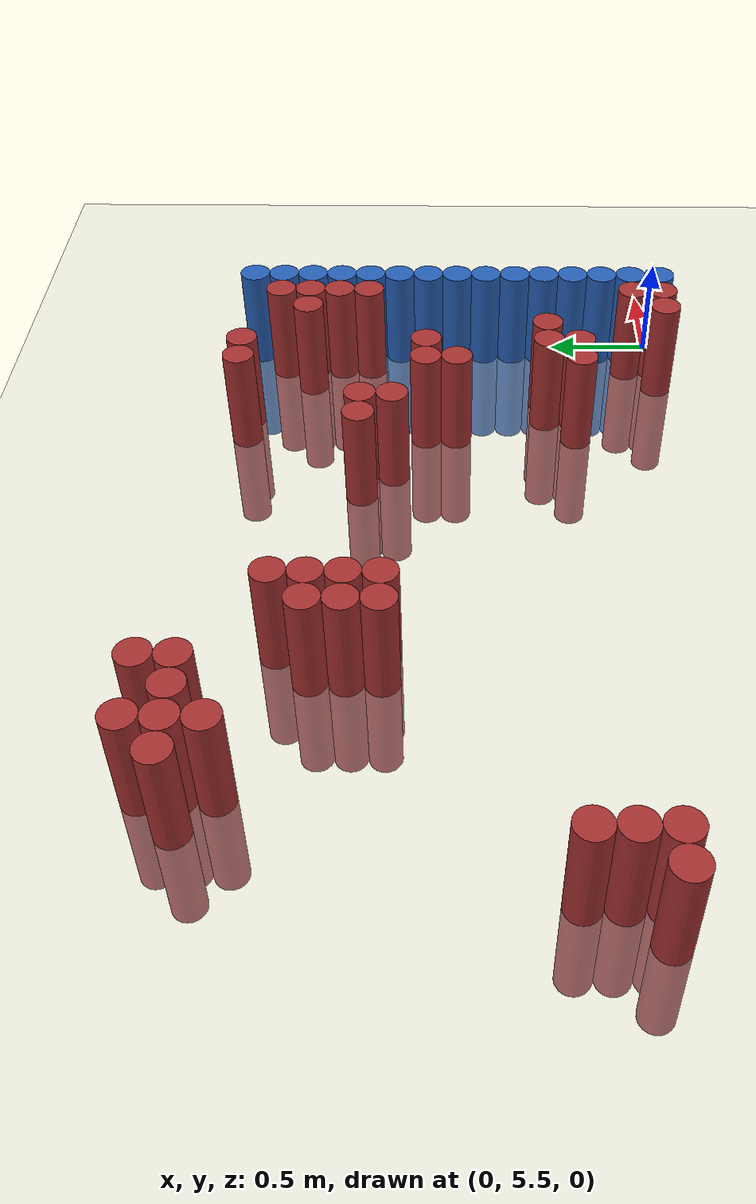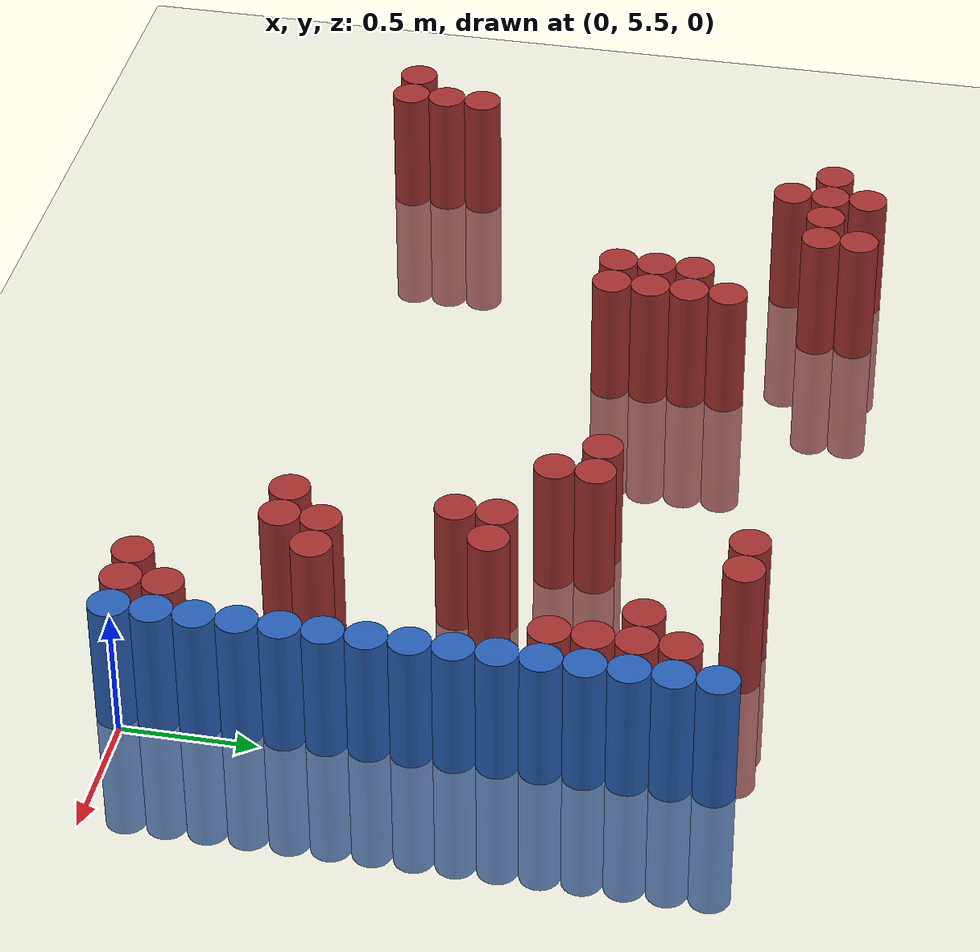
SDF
<sdf version="1.6">
 <world name="default">
  <model name="ground_plane">
   <static>1</static>
   <link name="link">
    <collision name="collision">
     <geometry><plane><normal>0 0 1</normal><size>100 100</size></plane></geometry>
     <surface><friction><ode><mu>100</mu><mu2>50</mu2></ode></friction></surface>
    </collision>
    <visual name="visual">
     <cast_shadows>0</cast_shadows>
     <geometry><plane><normal>0 0 1</normal><size>100 100</size></plane></geometry>
     <material>
      <script><uri>file://media/materials/scripts/gazebo.material</uri><name>Gazebo/Grey</name></script>
     </material>
    </visual>
   </link>
  </model>
  <model name="unit_cylinder_158">
   <static>1</static>
   <pose>-3.675000 5.775000 0.000000 0.000000 0.000000 0.000000</pose>
   <link name="link">
    <inertial>
     <mass>1</mass>
     <inertia><ixx>0.145833</ixx><ixy>0</ixy><ixz>0</ixz><iyy>0.145833</iyy><iyz>0</iyz><izz>0.125</izz></inertia>
    </inertial>
    <collision name="collision">
     <geometry><cylinder><radius>0.075000</radius><length>1</length></cylinder></geometry>
    </collision>
    <visual name="visual">
     <geometry><cylinder><radius>0.075000</radius><length>1</length></cylinder></geometry>
     <material>
      <ambient>0.648000 0.192000 0.192000 1</ambient>
      <diffuse>0.648000 0.192000 0.192000 1</diffuse>
     </material>
     <material>
      <script><name>Gazebo/Grey</name><uri>file://media/materials/scripts/gazebo.material</uri></script>
     </material>
    </visual>
   </link>
  </model>
  <model name="unit_cylinder_163">
   <static>1</static>
   <pose>-3.525000 5.775000 0.000000 0.000000 0.000000 0.000000</pose>
   <link name="link">
    <inertial>
     <mass>1</mass>
     <inertia><ixx>0.145833</ixx><ixy>0</ixy><ixz>0</ixz><iyy>0.145833</iyy><iyz>0</iyz><izz>0.125</izz></inertia>
    </inertial>
    <collision name="collision">
     <geometry><cylinder><radius>0.075000</radius><length>1</length></cylinder></geometry>
    </collision>
    <visual name="visual">
     <geometry><cylinder><radius>0.075000</radius><length>1</length></cylinder></geometry>
     <material>
      <ambient>0.648000 0.192000 0.192000 1</ambient>
      <diffuse>0.648000 0.192000 0.192000 1</diffuse>
     </material>
     <material>
      <script><name>Gazebo/Grey</name><uri>file://media/materials/scripts/gazebo.material</uri></script>
     </material>
    </visual>
   </link>
  </model>
  <model name="unit_cylinder_164">
   <static>1</static>
   <pose>-3.525000 5.925000 0.000000 0.000000 0.000000 0.000000</pose>
   <link name="link">
    <inertial>
     <mass>1</mass>
     <inertia><ixx>0.145833</ixx><ixy>0</ixy><ixz>0</ixz><iyy>0.145833</iyy><iyz>0</iyz><izz>0.125</izz></inertia>
    </inertial>
    <collision name="collision">
     <geometry><cylinder><radius>0.075000</radius><length>1</length></cylinder></geometry>
    </collision>
    <visual name="visual">
     <geometry><cylinder><radius>0.075000</radius><length>1</length></cylinder></geometry>
     <material>
      <ambient>0.648000 0.192000 0.192000 1</ambient>
      <diffuse>0.648000 0.192000 0.192000 1</diffuse>
     </material>
     <material>
      <script><name>Gazebo/Grey</name><uri>file://media/materials/scripts/gazebo.material</uri></script>
     </material>
    </visual>
   </link>
  </model>
  <model name="unit_cylinder_165">
   <static>1</static>
   <pose>-3.525000 6.075000 0.000000 0.000000 0.000000 0.000000</pose>
   <link name="link">
    <inertial>
     <mass>1</mass>
     <inertia><ixx>0.145833</ixx><ixy>0</ixy><ixz>0</ixz><iyy>0.145833</iyy><iyz>0</iyz><izz>0.125</izz></inertia>
    </inertial>
    <collision name="collision">
     <geometry><cylinder><radius>0.075000</radius><length>1</length></cylinder></geometry>
    </collision>
    <visual name="visual">
     <geometry><cylinder><radius>0.075000</radius><length>1</length></cylinder></geometry>
     <material>
      <ambient>0.648000 0.192000 0.192000 1</ambient>
      <diffuse>0.648000 0.192000 0.192000 1</diffuse>
     </material>
     <material>
      <script><name>Gazebo/Grey</name><uri>file://media/materials/scripts/gazebo.material</uri></script>
     </material>
    </visual>
   </link>
  </model>
  <model name="unit_cylinder_168">
   <static>1</static>
   <pose>-3.225000 7.575000 0.000000 0.000000 0.000000 0.000000</pose>
   <link name="link">
    <inertial>
     <mass>1</mass>
     <inertia><ixx>0.145833</ixx><ixy>0</ixy><ixz>0</ixz><iyy>0.145833</iyy><iyz>0</iyz><izz>0.125</izz></inertia>
    </inertial>
    <collision name="collision">
     <geometry><cylinder><radius>0.075000</radius><length>1</length></cylinder></geometry>
    </collision>
    <visual name="visual">
     <geometry><cylinder><radius>0.075000</radius><length>1</length></cylinder></geometry>
     <material>
      <ambient>0.648000 0.192000 0.192000 1</ambient>
      <diffuse>0.648000 0.192000 0.192000 1</diffuse>
     </material>
     <material>
      <script><name>Gazebo/Grey</name><uri>file://media/materials/scripts/gazebo.material</uri></script>
     </material>
    </visual>
   </link>
  </model>
  <model name="unit_cylinder_171">
   <static>1</static>
   <pose>-3.075000 7.425000 0.000000 0.000000 0.000000 0.000000</pose>
   <link name="link">
    <inertial>
     <mass>1</mass>
     <inertia><ixx>0.145833</ixx><ixy>0</ixy><ixz>0</ixz><iyy>0.145833</iyy><iyz>0</iyz><izz>0.125</izz></inertia>
    </inertial>
    <collision name="collision">
     <geometry><cylinder><radius>0.075000</radius><length>1</length></cylinder></geometry>
    </collision>
    <visual name="visual">
     <geometry><cylinder><radius>0.075000</radius><length>1</length></cylinder></geometry>
     <material>
      <ambient>0.648000 0.192000 0.192000 1</ambient>
      <diffuse>0.648000 0.192000 0.192000 1</diffuse>
     </material>
     <material>
      <script><name>Gazebo/Grey</name><uri>file://media/materials/scripts/gazebo.material</uri></script>
     </material>
    </visual>
   </link>
  </model>
  <model name="unit_cylinder_172">
   <static>1</static>
   <pose>-3.075000 7.575000 0.000000 0.000000 0.000000 0.000000</pose>
   <link name="link">
    <inertial>
     <mass>1</mass>
     <inertia><ixx>0.145833</ixx><ixy>0</ixy><ixz>0</ixz><iyy>0.145833</iyy><iyz>0</iyz><izz>0.125</izz></inertia>
    </inertial>
    <collision name="collision">
     <geometry><cylinder><radius>0.075000</radius><length>1</length></cylinder></geometry>
    </collision>
    <visual name="visual">
     <geometry><cylinder><radius>0.075000</radius><length>1</length></cylinder></geometry>
     <material>
      <ambient>0.648000 0.192000 0.192000 1</ambient>
      <diffuse>0.648000 0.192000 0.192000 1</diffuse>
     </material>
     <material>
      <script><name>Gazebo/Grey</name><uri>file://media/materials/scripts/gazebo.material</uri></script>
     </material>
    </visual>
   </link>
  </model>
  <model name="unit_cylinder_173">
   <static>1</static>
   <pose>-3.075000 7.725000 0.000000 0.000000 0.000000 0.000000</pose>
   <link name="link">
    <inertial>
     <mass>1</mass>
     <inertia><ixx>0.145833</ixx><ixy>0</ixy><ixz>0</ixz><iyy>0.145833</iyy><iyz>0</iyz><izz>0.125</izz></inertia>
    </inertial>
    <collision name="collision">
     <geometry><cylinder><radius>0.075000</radius><length>1</length></cylinder></geometry>
    </collision>
    <visual name="visual">
     <geometry><cylinder><radius>0.075000</radius><length>1</length></cylinder></geometry>
     <material>
      <ambient>0.648000 0.192000 0.192000 1</ambient>
      <diffuse>0.648000 0.192000 0.192000 1</diffuse>
     </material>
     <material>
      <script><name>Gazebo/Grey</name><uri>file://media/materials/scripts/gazebo.material</uri></script>
     </material>
    </visual>
   </link>
  </model>
  <model name="unit_cylinder_177">
   <static>1</static>
   <pose>-2.925000 7.575000 0.000000 0.000000 0.000000 0.000000</pose>
   <link name="link">
    <inertial>
     <mass>1</mass>
     <inertia><ixx>0.145833</ixx><ixy>0</ixy><ixz>0</ixz><iyy>0.145833</iyy><iyz>0</iyz><izz>0.125</izz></inertia>
    </inertial>
    <collision name="collision">
     <geometry><cylinder><radius>0.075000</radius><length>1</length></cylinder></geometry>
    </collision>
    <visual name="visual">
     <geometry><cylinder><radius>0.075000</radius><length>1</length></cylinder></geometry>
     <material>
      <ambient>0.648000 0.192000 0.192000 1</ambient>
      <diffuse>0.648000 0.192000 0.192000 1</diffuse>
     </material>
     <material>
      <script><name>Gazebo/Grey</name><uri>file://media/materials/scripts/gazebo.material</uri></script>
     </material>
    </visual>
   </link>
  </model>
  <model name="unit_cylinder_182">
   <static>1</static>
   <pose>-2.775000 7.575000 0.000000 0.000000 0.000000 0.000000</pose>
   <link name="link">
    <inertial>
     <mass>1</mass>
     <inertia><ixx>0.145833</ixx><ixy>0</ixy><ixz>0</ixz><iyy>0.145833</iyy><iyz>0</iyz><izz>0.125</izz></inertia>
    </inertial>
    <collision name="collision">
     <geometry><cylinder><radius>0.075000</radius><length>1</length></cylinder></geometry>
    </collision>
    <visual name="visual">
     <geometry><cylinder><radius>0.075000</radius><length>1</length></cylinder></geometry>
     <material>
      <ambient>0.648000 0.192000 0.192000 1</ambient>
      <diffuse>0.648000 0.192000 0.192000 1</diffuse>
     </material>
     <material>
      <script><name>Gazebo/Grey</name><uri>file://media/materials/scripts/gazebo.material</uri></script>
     </material>
    </visual>
   </link>
  </model>
  <model name="unit_cylinder_183">
   <static>1</static>
   <pose>-2.775000 7.725000 0.000000 0.000000 0.000000 0.000000</pose>
   <link name="link">
    <inertial>
     <mass>1</mass>
     <inertia><ixx>0.145833</ixx><ixy>0</ixy><ixz>0</ixz><iyy>0.145833</iyy><iyz>0</iyz><izz>0.125</izz></inertia>
    </inertial>
    <collision name="collision">
     <geometry><cylinder><radius>0.075000</radius><length>1</length></cylinder></geometry>
    </collision>
    <visual name="visual">
     <geometry><cylinder><radius>0.075000</radius><length>1</length></cylinder></geometry>
     <material>
      <ambient>0.648000 0.192000 0.192000 1</ambient>
      <diffuse>0.648000 0.192000 0.192000 1</diffuse>
     </material>
     <material>
      <script><name>Gazebo/Grey</name><uri>file://media/materials/scripts/gazebo.material</uri></script>
     </material>
    </visual>
   </link>
  </model>
  <model name="unit_cylinder_187">
   <static>1</static>
   <pose>-2.475000 6.825000 0.000000 0.000000 0.000000 0.000000</pose>
   <link name="link">
    <inertial>
     <mass>1</mass>
     <inertia><ixx>0.145833</ixx><ixy>0</ixy><ixz>0</ixz><iyy>0.145833</iyy><iyz>0</iyz><izz>0.125</izz></inertia>
    </inertial>
    <collision name="collision">
     <geometry><cylinder><radius>0.075000</radius><length>1</length></cylinder></geometry>
    </collision>
    <visual name="visual">
     <geometry><cylinder><radius>0.075000</radius><length>1</length></cylinder></geometry>
     <material>
      <ambient>0.648000 0.192000 0.192000 1</ambient>
      <diffuse>0.648000 0.192000 0.192000 1</diffuse>
     </material>
     <material>
      <script><name>Gazebo/Grey</name><uri>file://media/materials/scripts/gazebo.material</uri></script>
     </material>
    </visual>
   </link>
  </model>
  <model name="unit_cylinder_188">
   <static>1</static>
   <pose>-2.475000 6.975000 0.000000 0.000000 0.000000 0.000000</pose>
   <link name="link">
    <inertial>
     <mass>1</mass>
     <inertia><ixx>0.145833</ixx><ixy>0</ixy><ixz>0</ixz><iyy>0.145833</iyy><iyz>0</iyz><izz>0.125</izz></inertia>
    </inertial>
    <collision name="collision">
     <geometry><cylinder><radius>0.075000</radius><length>1</length></cylinder></geometry>
    </collision>
    <visual name="visual">
     <geometry><cylinder><radius>0.075000</radius><length>1</length></cylinder></geometry>
     <material>
      <ambient>0.648000 0.192000 0.192000 1</ambient>
      <diffuse>0.648000 0.192000 0.192000 1</diffuse>
     </material>
     <material>
      <script><name>Gazebo/Grey</name><uri>file://media/materials/scripts/gazebo.material</uri></script>
     </material>
    </visual>
   </link>
  </model>
  <model name="unit_cylinder_189">
   <static>1</static>
   <pose>-2.475000 7.125000 0.000000 0.000000 0.000000 0.000000</pose>
   <link name="link">
    <inertial>
     <mass>1</mass>
     <inertia><ixx>0.145833</ixx><ixy>0</ixy><ixz>0</ixz><iyy>0.145833</iyy><iyz>0</iyz><izz>0.125</izz></inertia>
    </inertial>
    <collision name="collision">
     <geometry><cylinder><radius>0.075000</radius><length>1</length></cylinder></geometry>
    </collision>
    <visual name="visual">
     <geometry><cylinder><radius>0.075000</radius><length>1</length></cylinder></geometry>
     <material>
      <ambient>0.648000 0.192000 0.192000 1</ambient>
      <diffuse>0.648000 0.192000 0.192000 1</diffuse>
     </material>
     <material>
      <script><name>Gazebo/Grey</name><uri>file://media/materials/scripts/gazebo.material</uri></script>
     </material>
    </visual>
   </link>
  </model>
  <model name="unit_cylinder_190">
   <static>1</static>
   <pose>-2.325000 6.825000 0.000000 0.000000 0.000000 0.000000</pose>
   <link name="link">
    <inertial>
     <mass>1</mass>
     <inertia><ixx>0.145833</ixx><ixy>0</ixy><ixz>0</ixz><iyy>0.145833</iyy><iyz>0</iyz><izz>0.125</izz></inertia>
    </inertial>
    <collision name="collision">
     <geometry><cylinder><radius>0.075000</radius><length>1</length></cylinder></geometry>
    </collision>
    <visual name="visual">
     <geometry><cylinder><radius>0.075000</radius><length>1</length></cylinder></geometry>
     <material>
      <ambient>0.648000 0.192000 0.192000 1</ambient>
      <diffuse>0.648000 0.192000 0.192000 1</diffuse>
     </material>
     <material>
      <script><name>Gazebo/Grey</name><uri>file://media/materials/scripts/gazebo.material</uri></script>
     </material>
    </visual>
   </link>
  </model>
  <model name="unit_cylinder_191">
   <static>1</static>
   <pose>-2.325000 6.975000 0.000000 0.000000 0.000000 0.000000</pose>
   <link name="link">
    <inertial>
     <mass>1</mass>
     <inertia><ixx>0.145833</ixx><ixy>0</ixy><ixz>0</ixz><iyy>0.145833</iyy><iyz>0</iyz><izz>0.125</izz></inertia>
    </inertial>
    <collision name="collision">
     <geometry><cylinder><radius>0.075000</radius><length>1</length></cylinder></geometry>
    </collision>
    <visual name="visual">
     <geometry><cylinder><radius>0.075000</radius><length>1</length></cylinder></geometry>
     <material>
      <ambient>0.648000 0.192000 0.192000 1</ambient>
      <diffuse>0.648000 0.192000 0.192000 1</diffuse>
     </material>
     <material>
      <script><name>Gazebo/Grey</name><uri>file://media/materials/scripts/gazebo.material</uri></script>
     </material>
    </visual>
   </link>
  </model>
  <model name="unit_cylinder_192">
   <static>1</static>
   <pose>-2.325000 7.125000 0.000000 0.000000 0.000000 0.000000</pose>
   <link name="link">
    <inertial>
     <mass>1</mass>
     <inertia><ixx>0.145833</ixx><ixy>0</ixy><ixz>0</ixz><iyy>0.145833</iyy><iyz>0</iyz><izz>0.125</izz></inertia>
    </inertial>
    <collision name="collision">
     <geometry><cylinder><radius>0.075000</radius><length>1</length></cylinder></geometry>
    </collision>
    <visual name="visual">
     <geometry><cylinder><radius>0.075000</radius><length>1</length></cylinder></geometry>
     <material>
      <ambient>0.648000 0.192000 0.192000 1</ambient>
      <diffuse>0.648000 0.192000 0.192000 1</diffuse>
     </material>
     <material>
      <script><name>Gazebo/Grey</name><uri>file://media/materials/scripts/gazebo.material</uri></script>
     </material>
    </visual>
   </link>
  </model>
  <model name="unit_cylinder_193">
   <static>1</static>
   <pose>-2.325000 7.275000 0.000000 0.000000 0.000000 0.000000</pose>
   <link name="link">
    <inertial>
     <mass>1</mass>
     <inertia><ixx>0.145833</ixx><ixy>0</ixy><ixz>0</ixz><iyy>0.145833</iyy><iyz>0</iyz><izz>0.125</izz></inertia>
    </inertial>
    <collision name="collision">
     <geometry><cylinder><radius>0.075000</radius><length>1</length></cylinder></geometry>
    </collision>
    <visual name="visual">
     <geometry><cylinder><radius>0.075000</radius><length>1</length></cylinder></geometry>
     <material>
      <ambient>0.648000 0.192000 0.192000 1</ambient>
      <diffuse>0.648000 0.192000 0.192000 1</diffuse>
     </material>
     <material>
      <script><name>Gazebo/Grey</name><uri>file://media/materials/scripts/gazebo.material</uri></script>
     </material>
    </visual>
   </link>
  </model>
  <model name="unit_cylinder_203">
   <static>1</static>
   <pose>-1.275000 6.975000 0.000000 0.000000 0.000000 0.000000</pose>
   <link name="link">
    <inertial>
     <mass>1</mass>
     <inertia><ixx>0.145833</ixx><ixy>0</ixy><ixz>0</ixz><iyy>0.145833</iyy><iyz>0</iyz><izz>0.125</izz></inertia>
    </inertial>
    <collision name="collision">
     <geometry><cylinder><radius>0.075000</radius><length>1</length></cylinder></geometry>
    </collision>
    <visual name="visual">
     <geometry><cylinder><radius>0.075000</radius><length>1</length></cylinder></geometry>
     <material>
      <ambient>0.648000 0.192000 0.192000 1</ambient>
      <diffuse>0.648000 0.192000 0.192000 1</diffuse>
     </material>
     <material>
      <script><name>Gazebo/Grey</name><uri>file://media/materials/scripts/gazebo.material</uri></script>
     </material>
    </visual>
   </link>
  </model>
  <model name="unit_cylinder_204">
   <static>1</static>
   <pose>-1.125000 6.825000 0.000000 0.000000 0.000000 0.000000</pose>
   <link name="link">
    <inertial>
     <mass>1</mass>
     <inertia><ixx>0.145833</ixx><ixy>0</ixy><ixz>0</ixz><iyy>0.145833</iyy><iyz>0</iyz><izz>0.125</izz></inertia>
    </inertial>
    <collision name="collision">
     <geometry><cylinder><radius>0.075000</radius><length>1</length></cylinder></geometry>
    </collision>
    <visual name="visual">
     <geometry><cylinder><radius>0.075000</radius><length>1</length></cylinder></geometry>
     <material>
      <ambient>0.648000 0.192000 0.192000 1</ambient>
      <diffuse>0.648000 0.192000 0.192000 1</diffuse>
     </material>
     <material>
      <script><name>Gazebo/Grey</name><uri>file://media/materials/scripts/gazebo.material</uri></script>
     </material>
    </visual>
   </link>
  </model>
  <model name="unit_cylinder_205">
   <static>1</static>
   <pose>-1.125000 6.975000 0.000000 0.000000 0.000000 0.000000</pose>
   <link name="link">
    <inertial>
     <mass>1</mass>
     <inertia><ixx>0.145833</ixx><ixy>0</ixy><ixz>0</ixz><iyy>0.145833</iyy><iyz>0</iyz><izz>0.125</izz></inertia>
    </inertial>
    <collision name="collision">
     <geometry><cylinder><radius>0.075000</radius><length>1</length></cylinder></geometry>
    </collision>
    <visual name="visual">
     <geometry><cylinder><radius>0.075000</radius><length>1</length></cylinder></geometry>
     <material>
      <ambient>0.648000 0.192000 0.192000 1</ambient>
      <diffuse>0.648000 0.192000 0.192000 1</diffuse>
     </material>
     <material>
      <script><name>Gazebo/Grey</name><uri>file://media/materials/scripts/gazebo.material</uri></script>
     </material>
    </visual>
   </link>
  </model>
  <model name="unit_cylinder_206">
   <static>1</static>
   <pose>-0.825000 5.925000 0.000000 0.000000 0.000000 0.000000</pose>
   <link name="link">
    <inertial>
     <mass>1</mass>
     <inertia><ixx>0.145833</ixx><ixy>0</ixy><ixz>0</ixz><iyy>0.145833</iyy><iyz>0</iyz><izz>0.125</izz></inertia>
    </inertial>
    <collision name="collision">
     <geometry><cylinder><radius>0.075000</radius><length>1</length></cylinder></geometry>
    </collision>
    <visual name="visual">
     <geometry><cylinder><radius>0.075000</radius><length>1</length></cylinder></geometry>
     <material>
      <ambient>0.648000 0.192000 0.192000 1</ambient>
      <diffuse>0.648000 0.192000 0.192000 1</diffuse>
     </material>
     <material>
      <script><name>Gazebo/Grey</name><uri>file://media/materials/scripts/gazebo.material</uri></script>
     </material>
    </visual>
   </link>
  </model>
  <model name="unit_cylinder_207">
   <static>1</static>
   <pose>-0.825000 6.525000 0.000000 0.000000 0.000000 0.000000</pose>
   <link name="link">
    <inertial>
     <mass>1</mass>
     <inertia><ixx>0.145833</ixx><ixy>0</ixy><ixz>0</ixz><iyy>0.145833</iyy><iyz>0</iyz><izz>0.125</izz></inertia>
    </inertial>
    <collision name="collision">
     <geometry><cylinder><radius>0.075000</radius><length>1</length></cylinder></geometry>
    </collision>
    <visual name="visual">
     <geometry><cylinder><radius>0.075000</radius><length>1</length></cylinder></geometry>
     <material>
      <ambient>0.648000 0.192000 0.192000 1</ambient>
      <diffuse>0.648000 0.192000 0.192000 1</diffuse>
     </material>
     <material>
      <script><name>Gazebo/Grey</name><uri>file://media/materials/scripts/gazebo.material</uri></script>
     </material>
    </visual>
   </link>
  </model>
  <model name="unit_cylinder_208">
   <static>1</static>
   <pose>-0.825000 6.675000 0.000000 0.000000 0.000000 0.000000</pose>
   <link name="link">
    <inertial>
     <mass>1</mass>
     <inertia><ixx>0.145833</ixx><ixy>0</ixy><ixz>0</ixz><iyy>0.145833</iyy><iyz>0</iyz><izz>0.125</izz></inertia>
    </inertial>
    <collision name="collision">
     <geometry><cylinder><radius>0.075000</radius><length>1</length></cylinder></geometry>
    </collision>
    <visual name="visual">
     <geometry><cylinder><radius>0.075000</radius><length>1</length></cylinder></geometry>
     <material>
      <ambient>0.648000 0.192000 0.192000 1</ambient>
      <diffuse>0.648000 0.192000 0.192000 1</diffuse>
     </material>
     <material>
      <script><name>Gazebo/Grey</name><uri>file://media/materials/scripts/gazebo.material</uri></script>
     </material>
    </visual>
   </link>
  </model>
  <model name="unit_cylinder_209">
   <static>1</static>
   <pose>-0.825000 7.575000 0.000000 0.000000 0.000000 0.000000</pose>
   <link name="link">
    <inertial>
     <mass>1</mass>
     <inertia><ixx>0.145833</ixx><ixy>0</ixy><ixz>0</ixz><iyy>0.145833</iyy><iyz>0</iyz><izz>0.125</izz></inertia>
    </inertial>
    <collision name="collision">
     <geometry><cylinder><radius>0.075000</radius><length>1</length></cylinder></geometry>
    </collision>
    <visual name="visual">
     <geometry><cylinder><radius>0.075000</radius><length>1</length></cylinder></geometry>
     <material>
      <ambient>0.648000 0.192000 0.192000 1</ambient>
      <diffuse>0.648000 0.192000 0.192000 1</diffuse>
     </material>
     <material>
      <script><name>Gazebo/Grey</name><uri>file://media/materials/scripts/gazebo.material</uri></script>
     </material>
    </visual>
   </link>
  </model>
  <model name="unit_cylinder_210">
   <static>1</static>
   <pose>-0.675000 5.925000 0.000000 0.000000 0.000000 0.000000</pose>
   <link name="link">
    <inertial>
     <mass>1</mass>
     <inertia><ixx>0.145833</ixx><ixy>0</ixy><ixz>0</ixz><iyy>0.145833</iyy><iyz>0</iyz><izz>0.125</izz></inertia>
    </inertial>
    <collision name="collision">
     <geometry><cylinder><radius>0.075000</radius><length>1</length></cylinder></geometry>
    </collision>
    <visual name="visual">
     <geometry><cylinder><radius>0.075000</radius><length>1</length></cylinder></geometry>
     <material>
      <ambient>0.648000 0.192000 0.192000 1</ambient>
      <diffuse>0.648000 0.192000 0.192000 1</diffuse>
     </material>
     <material>
      <script><name>Gazebo/Grey</name><uri>file://media/materials/scripts/gazebo.material</uri></script>
     </material>
    </visual>
   </link>
  </model>
  <model name="unit_cylinder_211">
   <static>1</static>
   <pose>-0.675000 6.075000 0.000000 0.000000 0.000000 0.000000</pose>
   <link name="link">
    <inertial>
     <mass>1</mass>
     <inertia><ixx>0.145833</ixx><ixy>0</ixy><ixz>0</ixz><iyy>0.145833</iyy><iyz>0</iyz><izz>0.125</izz></inertia>
    </inertial>
    <collision name="collision">
     <geometry><cylinder><radius>0.075000</radius><length>1</length></cylinder></geometry>
    </collision>
    <visual name="visual">
     <geometry><cylinder><radius>0.075000</radius><length>1</length></cylinder></geometry>
     <material>
      <ambient>0.648000 0.192000 0.192000 1</ambient>
      <diffuse>0.648000 0.192000 0.192000 1</diffuse>
     </material>
     <material>
      <script><name>Gazebo/Grey</name><uri>file://media/materials/scripts/gazebo.material</uri></script>
     </material>
    </visual>
   </link>
  </model>
  <model name="unit_cylinder_212">
   <static>1</static>
   <pose>-0.675000 6.675000 0.000000 0.000000 0.000000 0.000000</pose>
   <link name="link">
    <inertial>
     <mass>1</mass>
     <inertia><ixx>0.145833</ixx><ixy>0</ixy><ixz>0</ixz><iyy>0.145833</iyy><iyz>0</iyz><izz>0.125</izz></inertia>
    </inertial>
    <collision name="collision">
     <geometry><cylinder><radius>0.075000</radius><length>1</length></cylinder></geometry>
    </collision>
    <visual name="visual">
     <geometry><cylinder><radius>0.075000</radius><length>1</length></cylinder></geometry>
     <material>
      <ambient>0.648000 0.192000 0.192000 1</ambient>
      <diffuse>0.648000 0.192000 0.192000 1</diffuse>
     </material>
     <material>
      <script><name>Gazebo/Grey</name><uri>file://media/materials/scripts/gazebo.material</uri></script>
     </material>
    </visual>
   </link>
  </model>
  <model name="unit_cylinder_213">
   <static>1</static>
   <pose>-0.675000 7.575000 0.000000 0.000000 0.000000 0.000000</pose>
   <link name="link">
    <inertial>
     <mass>1</mass>
     <inertia><ixx>0.145833</ixx><ixy>0</ixy><ixz>0</ixz><iyy>0.145833</iyy><iyz>0</iyz><izz>0.125</izz></inertia>
    </inertial>
    <collision name="collision">
     <geometry><cylinder><radius>0.075000</radius><length>1</length></cylinder></geometry>
    </collision>
    <visual name="visual">
     <geometry><cylinder><radius>0.075000</radius><length>1</length></cylinder></geometry>
     <material>
      <ambient>0.648000 0.192000 0.192000 1</ambient>
      <diffuse>0.648000 0.192000 0.192000 1</diffuse>
     </material>
     <material>
      <script><name>Gazebo/Grey</name><uri>file://media/materials/scripts/gazebo.material</uri></script>
     </material>
    </visual>
   </link>
  </model>
  <model name="unit_cylinder_215">
   <static>1</static>
   <pose>-0.525000 6.075000 0.000000 0.000000 0.000000 0.000000</pose>
   <link name="link">
    <inertial>
     <mass>1</mass>
     <inertia><ixx>0.145833</ixx><ixy>0</ixy><ixz>0</ixz><iyy>0.145833</iyy><iyz>0</iyz><izz>0.125</izz></inertia>
    </inertial>
    <collision name="collision">
     <geometry><cylinder><radius>0.075000</radius><length>1</length></cylinder></geometry>
    </collision>
    <visual name="visual">
     <geometry><cylinder><radius>0.075000</radius><length>1</length></cylinder></geometry>
     <material>
      <ambient>0.648000 0.192000 0.192000 1</ambient>
      <diffuse>0.648000 0.192000 0.192000 1</diffuse>
     </material>
     <material>
      <script><name>Gazebo/Grey</name><uri>file://media/materials/scripts/gazebo.material</uri></script>
     </material>
    </visual>
   </link>
  </model>
  <model name="unit_cylinder_219">
   <static>1</static>
   <pose>-0.375000 5.475000 0.000000 0.000000 0.000000 0.000000</pose>
   <link name="link">
    <inertial>
     <mass>1</mass>
     <inertia><ixx>0.145833</ixx><ixy>0</ixy><ixz>0</ixz><iyy>0.145833</iyy><iyz>0</iyz><izz>0.125</izz></inertia>
    </inertial>
    <collision name="collision">
     <geometry><cylinder><radius>0.075000</radius><length>1</length></cylinder></geometry>
    </collision>
    <visual name="visual">
     <geometry><cylinder><radius>0.075000</radius><length>1</length></cylinder></geometry>
     <material>
      <ambient>0.648000 0.192000 0.192000 1</ambient>
      <diffuse>0.648000 0.192000 0.192000 1</diffuse>
     </material>
     <material>
      <script><name>Gazebo/Grey</name><uri>file://media/materials/scripts/gazebo.material</uri></script>
     </material>
    </visual>
   </link>
  </model>
  <model name="unit_cylinder_220">
   <static>1</static>
   <pose>-0.375000 7.275000 0.000000 0.000000 0.000000 0.000000</pose>
   <link name="link">
    <inertial>
     <mass>1</mass>
     <inertia><ixx>0.145833</ixx><ixy>0</ixy><ixz>0</ixz><iyy>0.145833</iyy><iyz>0</iyz><izz>0.125</izz></inertia>
    </inertial>
    <collision name="collision">
     <geometry><cylinder><radius>0.075000</radius><length>1</length></cylinder></geometry>
    </collision>
    <visual name="visual">
     <geometry><cylinder><radius>0.075000</radius><length>1</length></cylinder></geometry>
     <material>
      <ambient>0.648000 0.192000 0.192000 1</ambient>
      <diffuse>0.648000 0.192000 0.192000 1</diffuse>
     </material>
     <material>
      <script><name>Gazebo/Grey</name><uri>file://media/materials/scripts/gazebo.material</uri></script>
     </material>
    </visual>
   </link>
  </model>
  <model name="unit_cylinder_225">
   <static>1</static>
   <pose>-0.225000 5.475000 0.000000 0.000000 0.000000 0.000000</pose>
   <link name="link">
    <inertial>
     <mass>1</mass>
     <inertia><ixx>0.145833</ixx><ixy>0</ixy><ixz>0</ixz><iyy>0.145833</iyy><iyz>0</iyz><izz>0.125</izz></inertia>
    </inertial>
    <collision name="collision">
     <geometry><cylinder><radius>0.075000</radius><length>1</length></cylinder></geometry>
    </collision>
    <visual name="visual">
     <geometry><cylinder><radius>0.075000</radius><length>1</length></cylinder></geometry>
     <material>
      <ambient>0.648000 0.192000 0.192000 1</ambient>
      <diffuse>0.648000 0.192000 0.192000 1</diffuse>
     </material>
     <material>
      <script><name>Gazebo/Grey</name><uri>file://media/materials/scripts/gazebo.material</uri></script>
     </material>
    </visual>
   </link>
  </model>
  <model name="unit_cylinder_226">
   <static>1</static>
   <pose>-0.225000 5.625000 0.000000 0.000000 0.000000 0.000000</pose>
   <link name="link">
    <inertial>
     <mass>1</mass>
     <inertia><ixx>0.145833</ixx><ixy>0</ixy><ixz>0</ixz><iyy>0.145833</iyy><iyz>0</iyz><izz>0.125</izz></inertia>
    </inertial>
    <collision name="collision">
     <geometry><cylinder><radius>0.075000</radius><length>1</length></cylinder></geometry>
    </collision>
    <visual name="visual">
     <geometry><cylinder><radius>0.075000</radius><length>1</length></cylinder></geometry>
     <material>
      <ambient>0.648000 0.192000 0.192000 1</ambient>
      <diffuse>0.648000 0.192000 0.192000 1</diffuse>
     </material>
     <material>
      <script><name>Gazebo/Grey</name><uri>file://media/materials/scripts/gazebo.material</uri></script>
     </material>
    </visual>
   </link>
  </model>
  <model name="unit_cylinder_227">
   <static>1</static>
   <pose>-0.225000 6.975000 0.000000 0.000000 0.000000 0.000000</pose>
   <link name="link">
    <inertial>
     <mass>1</mass>
     <inertia><ixx>0.145833</ixx><ixy>0</ixy><ixz>0</ixz><iyy>0.145833</iyy><iyz>0</iyz><izz>0.125</izz></inertia>
    </inertial>
    <collision name="collision">
     <geometry><cylinder><radius>0.075000</radius><length>1</length></cylinder></geometry>
    </collision>
    <visual name="visual">
     <geometry><cylinder><radius>0.075000</radius><length>1</length></cylinder></geometry>
     <material>
      <ambient>0.648000 0.192000 0.192000 1</ambient>
      <diffuse>0.648000 0.192000 0.192000 1</diffuse>
     </material>
     <material>
      <script><name>Gazebo/Grey</name><uri>file://media/materials/scripts/gazebo.material</uri></script>
     </material>
    </visual>
   </link>
  </model>
  <model name="unit_cylinder_228">
   <static>1</static>
   <pose>-0.225000 7.125000 0.000000 0.000000 0.000000 0.000000</pose>
   <link name="link">
    <inertial>
     <mass>1</mass>
     <inertia><ixx>0.145833</ixx><ixy>0</ixy><ixz>0</ixz><iyy>0.145833</iyy><iyz>0</iyz><izz>0.125</izz></inertia>
    </inertial>
    <collision name="collision">
     <geometry><cylinder><radius>0.075000</radius><length>1</length></cylinder></geometry>
    </collision>
    <visual name="visual">
     <geometry><cylinder><radius>0.075000</radius><length>1</length></cylinder></geometry>
     <material>
      <ambient>0.648000 0.192000 0.192000 1</ambient>
      <diffuse>0.648000 0.192000 0.192000 1</diffuse>
     </material>
     <material>
      <script><name>Gazebo/Grey</name><uri>file://media/materials/scripts/gazebo.material</uri></script>
     </material>
    </visual>
   </link>
  </model>
  <model name="unit_cylinder_229">
   <static>1</static>
   <pose>-0.225000 7.275000 0.000000 0.000000 0.000000 0.000000</pose>
   <link name="link">
    <inertial>
     <mass>1</mass>
     <inertia><ixx>0.145833</ixx><ixy>0</ixy><ixz>0</ixz><iyy>0.145833</iyy><iyz>0</iyz><izz>0.125</izz></inertia>
    </inertial>
    <collision name="collision">
     <geometry><cylinder><radius>0.075000</radius><length>1</length></cylinder></geometry>
    </collision>
    <visual name="visual">
     <geometry><cylinder><radius>0.075000</radius><length>1</length></cylinder></geometry>
     <material>
      <ambient>0.648000 0.192000 0.192000 1</ambient>
      <diffuse>0.648000 0.192000 0.192000 1</diffuse>
     </material>
     <material>
      <script><name>Gazebo/Grey</name><uri>file://media/materials/scripts/gazebo.material</uri></script>
     </material>
    </visual>
   </link>
  </model>
  <model name="unit_cylinder_230">
   <static>1</static>
   <pose>-0.225000 7.425000 0.000000 0.000000 0.000000 0.000000</pose>
   <link name="link">
    <inertial>
     <mass>1</mass>
     <inertia><ixx>0.145833</ixx><ixy>0</ixy><ixz>0</ixz><iyy>0.145833</iyy><iyz>0</iyz><izz>0.125</izz></inertia>
    </inertial>
    <collision name="collision">
     <geometry><cylinder><radius>0.075000</radius><length>1</length></cylinder></geometry>
    </collision>
    <visual name="visual">
     <geometry><cylinder><radius>0.075000</radius><length>1</length></cylinder></geometry>
     <material>
      <ambient>0.648000 0.192000 0.192000 1</ambient>
      <diffuse>0.648000 0.192000 0.192000 1</diffuse>
     </material>
     <material>
      <script><name>Gazebo/Grey</name><uri>file://media/materials/scripts/gazebo.material</uri></script>
     </material>
    </visual>
   </link>
  </model>
  <model name="unit_cylinder_240">
   <static>1</static>
   <pose>-0.075000 5.475000 0.000000 0.000000 0.000000 0.000000</pose>
   <link name="link">
    <inertial>
     <mass>1</mass>
     <inertia><ixx>0.145833</ixx><ixy>0</ixy><ixz>0</ixz><iyy>0.145833</iyy><iyz>0</iyz><izz>0.125</izz></inertia>
    </inertial>
    <collision name="collision">
     <geometry><cylinder><radius>0.075000</radius><length>1</length></cylinder></geometry>
    </collision>
    <visual name="visual">
     <geometry><cylinder><radius>0.075000</radius><length>1</length></cylinder></geometry>
     <material>
      <ambient>0.152000 0.379000 0.720000 1</ambient>
      <diffuse>0.152000 0.379000 0.720000 1</diffuse>
     </material>
     <material>
      <script><name>Gazebo/Grey</name><uri>file://media/materials/scripts/gazebo.material</uri></script>
     </material>
    </visual>
   </link>
  </model>
  <model name="unit_cylinder_241">
   <static>1</static>
   <pose>-0.075000 5.625000 0.000000 0.000000 0.000000 0.000000</pose>
   <link name="link">
    <inertial>
     <mass>1</mass>
     <inertia><ixx>0.145833</ixx><ixy>0</ixy><ixz>0</ixz><iyy>0.145833</iyy><iyz>0</iyz><izz>0.125</izz></inertia>
    </inertial>
    <collision name="collision">
     <geometry><cylinder><radius>0.075000</radius><length>1</length></cylinder></geometry>
    </collision>
    <visual name="visual">
     <geometry><cylinder><radius>0.075000</radius><length>1</length></cylinder></geometry>
     <material>
      <ambient>0.152000 0.379000 0.720000 1</ambient>
      <diffuse>0.152000 0.379000 0.720000 1</diffuse>
     </material>
     <material>
      <script><name>Gazebo/Grey</name><uri>file://media/materials/scripts/gazebo.material</uri></script>
     </material>
    </visual>
   </link>
  </model>
  <model name="unit_cylinder_242">
   <static>1</static>
   <pose>-0.075000 5.775000 0.000000 0.000000 0.000000 0.000000</pose>
   <link name="link">
    <inertial>
     <mass>1</mass>
     <inertia><ixx>0.145833</ixx><ixy>0</ixy><ixz>0</ixz><iyy>0.145833</iyy><iyz>0</iyz><izz>0.125</izz></inertia>
    </inertial>
    <collision name="collision">
     <geometry><cylinder><radius>0.075000</radius><length>1</length></cylinder></geometry>
    </collision>
    <visual name="visual">
     <geometry><cylinder><radius>0.075000</radius><length>1</length></cylinder></geometry>
     <material>
      <ambient>0.152000 0.379000 0.720000 1</ambient>
      <diffuse>0.152000 0.379000 0.720000 1</diffuse>
     </material>
     <material>
      <script><name>Gazebo/Grey</name><uri>file://media/materials/scripts/gazebo.material</uri></script>
     </material>
    </visual>
   </link>
  </model>
  <model name="unit_cylinder_243">
   <static>1</static>
   <pose>-0.075000 5.925000 0.000000 0.000000 0.000000 0.000000</pose>
   <link name="link">
    <inertial>
     <mass>1</mass>
     <inertia><ixx>0.145833</ixx><ixy>0</ixy><ixz>0</ixz><iyy>0.145833</iyy><iyz>0</iyz><izz>0.125</izz></inertia>
    </inertial>
    <collision name="collision">
     <geometry><cylinder><radius>0.075000</radius><length>1</length></cylinder></geometry>
    </collision>
    <visual name="visual">
     <geometry><cylinder><radius>0.075000</radius><length>1</length></cylinder></geometry>
     <material>
      <ambient>0.152000 0.379000 0.720000 1</ambient>
      <diffuse>0.152000 0.379000 0.720000 1</diffuse>
     </material>
     <material>
      <script><name>Gazebo/Grey</name><uri>file://media/materials/scripts/gazebo.material</uri></script>
     </material>
    </visual>
   </link>
  </model>
  <model name="unit_cylinder_244">
   <static>1</static>
   <pose>-0.075000 6.075000 0.000000 0.000000 0.000000 0.000000</pose>
   <link name="link">
    <inertial>
     <mass>1</mass>
     <inertia><ixx>0.145833</ixx><ixy>0</ixy><ixz>0</ixz><iyy>0.145833</iyy><iyz>0</iyz><izz>0.125</izz></inertia>
    </inertial>
    <collision name="collision">
     <geometry><cylinder><radius>0.075000</radius><length>1</length></cylinder></geometry>
    </collision>
    <visual name="visual">
     <geometry><cylinder><radius>0.075000</radius><length>1</length></cylinder></geometry>
     <material>
      <ambient>0.152000 0.379000 0.720000 1</ambient>
      <diffuse>0.152000 0.379000 0.720000 1</diffuse>
     </material>
     <material>
      <script><name>Gazebo/Grey</name><uri>file://media/materials/scripts/gazebo.material</uri></script>
     </material>
    </visual>
   </link>
  </model>
  <model name="unit_cylinder_245">
   <static>1</static>
   <pose>-0.075000 6.225000 0.000000 0.000000 0.000000 0.000000</pose>
   <link name="link">
    <inertial>
     <mass>1</mass>
     <inertia><ixx>0.145833</ixx><ixy>0</ixy><ixz>0</ixz><iyy>0.145833</iyy><iyz>0</iyz><izz>0.125</izz></inertia>
    </inertial>
    <collision name="collision">
     <geometry><cylinder><radius>0.075000</radius><length>1</length></cylinder></geometry>
    </collision>
    <visual name="visual">
     <geometry><cylinder><radius>0.075000</radius><length>1</length></cylinder></geometry>
     <material>
      <ambient>0.152000 0.379000 0.720000 1</ambient>
      <diffuse>0.152000 0.379000 0.720000 1</diffuse>
     </material>
     <material>
      <script><name>Gazebo/Grey</name><uri>file://media/materials/scripts/gazebo.material</uri></script>
     </material>
    </visual>
   </link>
  </model>
  <model name="unit_cylinder_246">
   <static>1</static>
   <pose>-0.075000 6.375000 0.000000 0.000000 0.000000 0.000000</pose>
   <link name="link">
    <inertial>
     <mass>1</mass>
     <inertia><ixx>0.145833</ixx><ixy>0</ixy><ixz>0</ixz><iyy>0.145833</iyy><iyz>0</iyz><izz>0.125</izz></inertia>
    </inertial>
    <collision name="collision">
     <geometry><cylinder><radius>0.075000</radius><length>1</length></cylinder></geometry>
    </collision>
    <visual name="visual">
     <geometry><cylinder><radius>0.075000</radius><length>1</length></cylinder></geometry>
     <material>
      <ambient>0.152000 0.379000 0.720000 1</ambient>
      <diffuse>0.152000 0.379000 0.720000 1</diffuse>
     </material>
     <material>
      <script><name>Gazebo/Grey</name><uri>file://media/materials/scripts/gazebo.material</uri></script>
     </material>
    </visual>
   </link>
  </model>
  <model name="unit_cylinder_247">
   <static>1</static>
   <pose>-0.075000 6.525000 0.000000 0.000000 0.000000 0.000000</pose>
   <link name="link">
    <inertial>
     <mass>1</mass>
     <inertia><ixx>0.145833</ixx><ixy>0</ixy><ixz>0</ixz><iyy>0.145833</iyy><iyz>0</iyz><izz>0.125</izz></inertia>
    </inertial>
    <collision name="collision">
     <geometry><cylinder><radius>0.075000</radius><length>1</length></cylinder></geometry>
    </collision>
    <visual name="visual">
     <geometry><cylinder><radius>0.075000</radius><length>1</length></cylinder></geometry>
     <material>
      <ambient>0.152000 0.379000 0.720000 1</ambient>
      <diffuse>0.152000 0.379000 0.720000 1</diffuse>
     </material>
     <material>
      <script><name>Gazebo/Grey</name><uri>file://media/materials/scripts/gazebo.material</uri></script>
     </material>
    </visual>
   </link>
  </model>
  <model name="unit_cylinder_248">
   <static>1</static>
   <pose>-0.075000 6.675000 0.000000 0.000000 0.000000 0.000000</pose>
   <link name="link">
    <inertial>
     <mass>1</mass>
     <inertia><ixx>0.145833</ixx><ixy>0</ixy><ixz>0</ixz><iyy>0.145833</iyy><iyz>0</iyz><izz>0.125</izz></inertia>
    </inertial>
    <collision name="collision">
     <geometry><cylinder><radius>0.075000</radius><length>1</length></cylinder></geometry>
    </collision>
    <visual name="visual">
     <geometry><cylinder><radius>0.075000</radius><length>1</length></cylinder></geometry>
     <material>
      <ambient>0.152000 0.379000 0.720000 1</ambient>
      <diffuse>0.152000 0.379000 0.720000 1</diffuse>
     </material>
     <material>
      <script><name>Gazebo/Grey</name><uri>file://media/materials/scripts/gazebo.material</uri></script>
     </material>
    </visual>
   </link>
  </model>
  <model name="unit_cylinder_249">
   <static>1</static>
   <pose>-0.075000 6.825000 0.000000 0.000000 0.000000 0.000000</pose>
   <link name="link">
    <inertial>
     <mass>1</mass>
     <inertia><ixx>0.145833</ixx><ixy>0</ixy><ixz>0</ixz><iyy>0.145833</iyy><iyz>0</iyz><izz>0.125</izz></inertia>
    </inertial>
    <collision name="collision">
     <geometry><cylinder><radius>0.075000</radius><length>1</length></cylinder></geometry>
    </collision>
    <visual name="visual">
     <geometry><cylinder><radius>0.075000</radius><length>1</length></cylinder></geometry>
     <material>
      <ambient>0.152000 0.379000 0.720000 1</ambient>
      <diffuse>0.152000 0.379000 0.720000 1</diffuse>
     </material>
     <material>
      <script><name>Gazebo/Grey</name><uri>file://media/materials/scripts/gazebo.material</uri></script>
     </material>
    </visual>
   </link>
  </model>
  <model name="unit_cylinder_250">
   <static>1</static>
   <pose>-0.075000 6.975000 0.000000 0.000000 0.000000 0.000000</pose>
   <link name="link">
    <inertial>
     <mass>1</mass>
     <inertia><ixx>0.145833</ixx><ixy>0</ixy><ixz>0</ixz><iyy>0.145833</iyy><iyz>0</iyz><izz>0.125</izz></inertia>
    </inertial>
    <collision name="collision">
     <geometry><cylinder><radius>0.075000</radius><length>1</length></cylinder></geometry>
    </collision>
    <visual name="visual">
     <geometry><cylinder><radius>0.075000</radius><length>1</length></cylinder></geometry>
     <material>
      <ambient>0.152000 0.379000 0.720000 1</ambient>
      <diffuse>0.152000 0.379000 0.720000 1</diffuse>
     </material>
     <material>
      <script><name>Gazebo/Grey</name><uri>file://media/materials/scripts/gazebo.material</uri></script>
     </material>
    </visual>
   </link>
  </model>
  <model name="unit_cylinder_251">
   <static>1</static>
   <pose>-0.075000 7.125000 0.000000 0.000000 0.000000 0.000000</pose>
   <link name="link">
    <inertial>
     <mass>1</mass>
     <inertia><ixx>0.145833</ixx><ixy>0</ixy><ixz>0</ixz><iyy>0.145833</iyy><iyz>0</iyz><izz>0.125</izz></inertia>
    </inertial>
    <collision name="collision">
     <geometry><cylinder><radius>0.075000</radius><length>1</length></cylinder></geometry>
    </collision>
    <visual name="visual">
     <geometry><cylinder><radius>0.075000</radius><length>1</length></cylinder></geometry>
     <material>
      <ambient>0.152000 0.379000 0.720000 1</ambient>
      <diffuse>0.152000 0.379000 0.720000 1</diffuse>
     </material>
     <material>
      <script><name>Gazebo/Grey</name><uri>file://media/materials/scripts/gazebo.material</uri></script>
     </material>
    </visual>
   </link>
  </model>
  <model name="unit_cylinder_252">
   <static>1</static>
   <pose>-0.075000 7.275000 0.000000 0.000000 0.000000 0.000000</pose>
   <link name="link">
    <inertial>
     <mass>1</mass>
     <inertia><ixx>0.145833</ixx><ixy>0</ixy><ixz>0</ixz><iyy>0.145833</iyy><iyz>0</iyz><izz>0.125</izz></inertia>
    </inertial>
    <collision name="collision">
     <geometry><cylinder><radius>0.075000</radius><length>1</length></cylinder></geometry>
    </collision>
    <visual name="visual">
     <geometry><cylinder><radius>0.075000</radius><length>1</length></cylinder></geometry>
     <material>
      <ambient>0.152000 0.379000 0.720000 1</ambient>
      <diffuse>0.152000 0.379000 0.720000 1</diffuse>
     </material>
     <material>
      <script><name>Gazebo/Grey</name><uri>file://media/materials/scripts/gazebo.material</uri></script>
     </material>
    </visual>
   </link>
  </model>
  <model name="unit_cylinder_253">
   <static>1</static>
   <pose>-0.075000 7.425000 0.000000 0.000000 0.000000 0.000000</pose>
   <link name="link">
    <inertial>
     <mass>1</mass>
     <inertia><ixx>0.145833</ixx><ixy>0</ixy><ixz>0</ixz><iyy>0.145833</iyy><iyz>0</iyz><izz>0.125</izz></inertia>
    </inertial>
    <collision name="collision">
     <geometry><cylinder><radius>0.075000</radius><length>1</length></cylinder></geometry>
    </collision>
    <visual name="visual">
     <geometry><cylinder><radius>0.075000</radius><length>1</length></cylinder></geometry>
     <material>
      <ambient>0.152000 0.379000 0.720000 1</ambient>
      <diffuse>0.152000 0.379000 0.720000 1</diffuse>
     </material>
     <material>
      <script><name>Gazebo/Grey</name><uri>file://media/materials/scripts/gazebo.material</uri></script>
     </material>
    </visual>
   </link>
  </model>
  <model name="unit_cylinder_254">
   <static>1</static>
   <pose>-0.075000 7.575000 0.000000 0.000000 0.000000 0.000000</pose>
   <link name="link">
    <inertial>
     <mass>1</mass>
     <inertia><ixx>0.145833</ixx><ixy>0</ixy><ixz>0</ixz><iyy>0.145833</iyy><iyz>0</iyz><izz>0.125</izz></inertia>
    </inertial>
    <collision name="collision">
     <geometry><cylinder><radius>0.075000</radius><length>1</length></cylinder></geometry>
    </collision>
    <visual name="visual">
     <geometry><cylinder><radius>0.075000</radius><length>1</length></cylinder></geometry>
     <material>
      <ambient>0.152000 0.379000 0.720000 1</ambient>
      <diffuse>0.152000 0.379000 0.720000 1</diffuse>
     </material>
     <material>
      <script><name>Gazebo/Grey</name><uri>file://media/materials/scripts/gazebo.material</uri></script>
     </material>
    </visual>
   </link>
  </model>
 </world>
</sdf>
